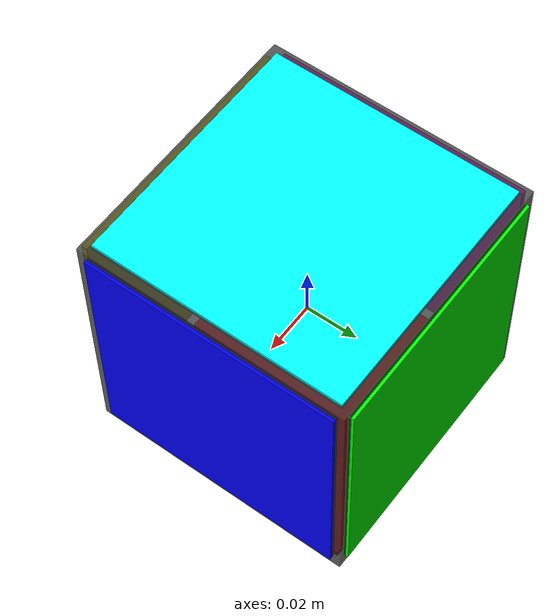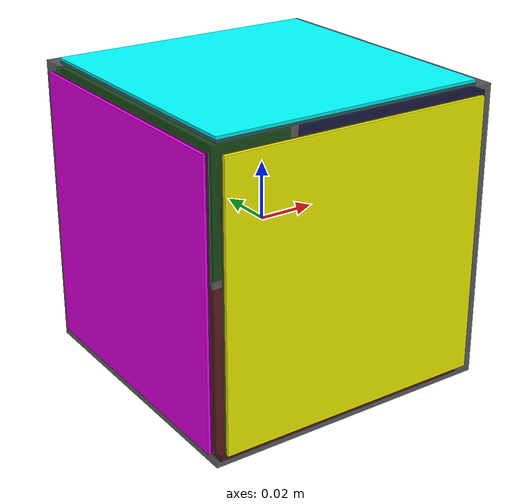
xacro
<?xml version="1.0"?>
<robot xmlns:xacro="http://www.ros.org/wiki/xacro" name="dice_master">

  <!-- Include the screen component macro -->
  <xacro:include filename="screen_component.urdf.xacro"/>

  <!-- IMU link (root link of the robot) -->
  <link name="imu_link">
    <visual>
      <geometry>
        <box size="0.02 0.02 0.005"/> <!-- Small IMU sensor -->
      </geometry>
      <material name="imu_sensor">
        <color rgba="0.3 0.3 0.3 0.9"/> <!-- Dark gray for IMU -->
      </material>
    </visual>
    <collision>
      <geometry>
        <box size="0.02 0.02 0.005"/>
      </geometry>
    </collision>
    <inertial>
      <mass value="0.01"/>
      <inertia ixx="0.0001" ixy="0" ixz="0" iyy="0.0001" iyz="0" izz="0.0001"/>
    </inertial>
  </link>

  <!-- Base link (center of the dice, attached to IMU) -->
  <joint name="base_joint" type="fixed">
    <parent link="imu_link"/>
    <child link="base_link"/>
    <origin xyz="0 0 0" rpy="-3.14159 0 3.14159"/> <!-- Base at center of IMU, no rotation -->
  </joint>

  <link name="base_link">
    <visual>
      <geometry>
        <box size="0.1016 0.1016 0.1016"/> <!-- 4 inches = 0.1016 meters -->
      </geometry>
      <material name="dice_body">
        <color rgba="0.2 0.2 0.2 0.8"/> <!-- Dark gray with transparency -->
      </material>
    </visual>
    <collision>
      <geometry>
        <box size="0.1016 0.1016 0.1016"/>
      </geometry>
    </collision>
    <inertial>
      <mass value="0.5"/>
      <inertia ixx="0.001" ixy="0" ixz="0" iyy="0.001" iyz="0" izz="0.001"/>
    </inertial>
  </link>

  <!-- Screen 1: Top face (+Z direction) -->
  <xacro:screen_component screen_id="1" color_r="1.0" color_g="0.0" color_b="0.0"/> <!-- Red -->
  <joint name="screen_1_joint" type="fixed">
    <parent link="base_link"/>
    <child link="screen_1_link"/>
    <origin xyz="0 0 0.0508" rpy="0 0 0"/> <!-- Half cube height up -->
  </joint>

  <!-- Screen 2: Right face (+Y direction) -->
  <xacro:screen_component screen_id="2" color_r="0.0" color_g="1.0" color_b="0.0"/> <!-- Green -->
  <joint name="screen_2_joint" type="fixed">
    <parent link="base_link"/>
    <child link="screen_2_link"/>
    <origin xyz="0 0.0508 0" rpy="-1.5708 0 0"/> <!-- Rotated to face +Y -->
  </joint>

  <!-- Screen 3: Front face (-X direction) -->
  <xacro:screen_component screen_id="3" color_r="0.0" color_g="0.0" color_b="1.0"/> <!-- Blue -->
  <joint name="screen_3_joint" type="fixed">
    <parent link="base_link"/>
    <child link="screen_3_link"/>
    <origin xyz="-0.0508 0 0" rpy="0 -1.5708 0"/> <!-- Rotated to face -X -->
  </joint>

  <!-- Screen 4: Left face (-Y direction) -->
  <xacro:screen_component screen_id="4" color_r="1.0" color_g="1.0" color_b="0.0"/> <!-- Yellow -->
  <joint name="screen_4_joint" type="fixed">
    <parent link="base_link"/>
    <child link="screen_4_link"/>
    <origin xyz="0 -0.0508 0" rpy="0 1.5708 -1.5708"/> <!-- Rotated to face -Y -->
  </joint>

  <!-- Screen 5: Back face (+X direction) -->
  <xacro:screen_component screen_id="5" color_r="1.0" color_g="0.0" color_b="1.0"/> <!-- Magenta -->
  <joint name="screen_5_joint" type="fixed">
    <parent link="base_link"/>
    <child link="screen_5_link"/>
    <origin xyz="0.0508 0 0" rpy="0 -1.5708 3.14159"/> <!-- Rotated to face +X -->
  </joint>

  <!-- Screen 6: Bottom face (-Z direction) -->
  <xacro:screen_component screen_id="6" color_r="0.0" color_g="1.0" color_b="1.0"/> <!-- Cyan -->
  <joint name="screen_6_joint" type="fixed">
    <parent link="base_link"/>
    <child link="screen_6_link"/>
    <origin xyz="0 0 -0.0508" rpy="3.14159 0 3.14159"/> <!-- Half cube height down, flipped -->
  </joint>

</robot>

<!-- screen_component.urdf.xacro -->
<robot xmlns:xacro="http://www.ros.org/wiki/xacro">

  <!-- Screen component macro -->
  <xacro:macro name="screen_component" params="screen_id color_r color_g color_b">

    <!-- Main screen link -->
    <link name="screen_${screen_id}_link">
      <visual>
        <geometry>
          <box size="0.095 0.095 0.002"/> <!-- 3.74 inches screen, 2mm thick -->
        </geometry>
        <material name="screen_${screen_id}_material">
          <color rgba="${color_r} ${color_g} ${color_b} 1.0"/>
        </material>
      </visual>
      <collision>
        <geometry>
          <box size="0.095 0.095 0.002"/>
        </geometry>
      </collision>
    </link>

    <!-- Camera frame for image projection -->
    <joint name="screen_${screen_id}_camera_joint" type="fixed">
      <parent link="screen_${screen_id}_link"/>
      <child link="screen_${screen_id}_camera_frame"/>
      <origin xyz="0 0 0.01" rpy="0 0 0"/> <!-- 1cm above screen surface -->
    </joint>

    <link name="screen_${screen_id}_camera_frame"/>

    <!-- Edge detection frames for auto-rotation -->
    <!-- Top edge (+X direction in screen local frame) -->
    <joint name="screen_${screen_id}_edge_top_joint" type="fixed">
      <parent link="screen_${screen_id}_link"/>
      <child link="screen_${screen_id}_edge_top"/>
      <origin xyz="0.0475 0 0.001" rpy="0 0 0"/>
    </joint>
    <link name="screen_${screen_id}_edge_top"/>

    <!-- Right edge (+Y direction in screen local frame) -->
    <joint name="screen_${screen_id}_edge_right_joint" type="fixed">
      <parent link="screen_${screen_id}_link"/>
      <child link="screen_${screen_id}_edge_right"/>
      <origin xyz="0 0.0475 0.001" rpy="0 0 0"/>
    </joint>
    <link name="screen_${screen_id}_edge_right"/>

    <!-- Bottom edge (-X direction in screen local frame) -->
    <joint name="screen_${screen_id}_edge_bottom_joint" type="fixed">
      <parent link="screen_${screen_id}_link"/>
      <child link="screen_${screen_id}_edge_bottom"/>
      <origin xyz="-0.0475 0 0.001" rpy="0 0 0"/>
    </joint>
    <link name="screen_${screen_id}_edge_bottom"/>

    <!-- Left edge (-Y direction in screen local frame) -->
    <joint name="screen_${screen_id}_edge_left_joint" type="fixed">
      <parent link="screen_${screen_id}_link"/>
      <child link="screen_${screen_id}_edge_left"/>
      <origin xyz="0 -0.0475 0.001" rpy="0 0 0"/>
    </joint>
    <link name="screen_${screen_id}_edge_left"/>

  </xacro:macro>

</robot>
